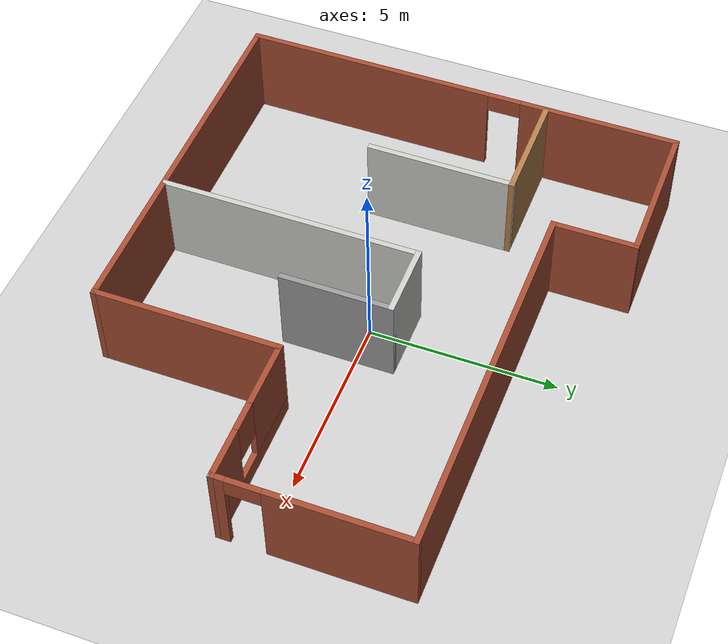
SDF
<?xml version="1.0" ?>

<sdf version="1.5">
  <!-- We use a custom world for the robot so that it can be tested in a simple house -->
  <world name="simple_house">

    <!-- Add a ground plane -->
    <include>
        <uri>model://ground_plane</uri>
        <material>
            <script>
                <uri>file://media/materials/scripts/gazebo.material</uri>
            </script>
        </material>
    </include>

    <!-- Global light source -->
    <include>
      <uri>model://sun</uri>
    </include>

    <!-- Apartment Walls -->
    <include>
      <uri>model://simple_house</uri>
      <pose>0 0 0 0 0 0</pose>
    </include>

  </world>
</sdf>

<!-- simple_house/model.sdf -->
<sdf version='1.7'>
  <model name='simple_house'>
    <pose>-5.019 -3.8615 0 0 -0 0</pose>
    <link name='Wall_10'>
      <pose>-6.85 -0 0 0 -0 1.5708</pose>
      <visual name='Wall_10_Visual_0'>
        <pose>-2.60594 0 1.25 0 -0 0</pose>
        <geometry>
          <box>
            <size>6.78811 0.15 2.5</size>
          </box>
        </geometry>
        <material>
          <script>
            <uri>file://media/materials/scripts/gazebo.material</uri>
            <name>Gazebo/Bricks</name>
          </script>
          <ambient>1 1 1 1</ambient>
        </material>
        <meta>
          <layer>0</layer>
        </meta>
      </visual>
      <collision name='Wall_10_Collision_0'>
        <geometry>
          <box>
            <size>6.78811 0.15 2.5</size>
          </box>
        </geometry>
        <pose>-2.60594 0 1.25 0 -0 0</pose>
      </collision>
      <visual name='Wall_10_Visual_1'>
        <pose>3.84406 0 1.25 0 -0 0</pose>
        <geometry>
          <box>
            <size>4.31189 0.15 2.5</size>
          </box>
        </geometry>
        <material>
          <script>
            <uri>file://media/materials/scripts/gazebo.material</uri>
            <name>Gazebo/Bricks</name>
          </script>
          <ambient>1 1 1 1</ambient>
        </material>
        <meta>
          <layer>0</layer>
        </meta>
      </visual>
      <collision name='Wall_10_Collision_1'>
        <geometry>
          <box>
            <size>4.31189 0.15 2.5</size>
          </box>
        </geometry>
        <pose>3.84406 0 1.25 0 -0 0</pose>
      </collision>
      <visual name='Wall_10_Visual_2'>
        <pose>1.23811 0 2.25 0 -0 0</pose>
        <geometry>
          <box>
            <size>0.9 0.15 0.5</size>
          </box>
        </geometry>
        <material>
          <script>
            <uri>file://media/materials/scripts/gazebo.material</uri>
            <name>Gazebo/Bricks</name>
          </script>
          <ambient>1 1 1 1</ambient>
        </material>
        <meta>
          <layer>0</layer>
        </meta>
      </visual>
      <collision name='Wall_10_Collision_2'>
        <geometry>
          <box>
            <size>0.9 0.15 0.5</size>
          </box>
        </geometry>
        <pose>1.23811 0 2.25 0 -0 0</pose>
      </collision>
    </link>
    <link name='Wall_11'>
      <collision name='Wall_11_Collision'>
        <geometry>
          <box>
            <size>4 0.15 2.5</size>
          </box>
        </geometry>
        <pose>0 0 1.25 0 -0 0</pose>
      </collision>
      <visual name='Wall_11_Visual'>
        <pose>0 0 1.25 0 -0 0</pose>
        <geometry>
          <box>
            <size>4 0.15 2.5</size>
          </box>
        </geometry>
        <material>
          <script>
            <uri>file://media/materials/scripts/gazebo.material</uri>
            <name>Gazebo/Bricks</name>
          </script>
          <ambient>1 1 1 1</ambient>
        </material>
        <meta>
          <layer>0</layer>
        </meta>
      </visual>
      <pose>-4.925 5.925 0 0 -0 0</pose>
    </link>
    <link name='Wall_12'>
      <collision name='Wall_12_Collision'>
        <geometry>
          <box>
            <size>2.3 0.15 2.5</size>
          </box>
        </geometry>
        <pose>0 0 1.25 0 -0 0</pose>
      </collision>
      <visual name='Wall_12_Visual'>
        <pose>0 0 1.25 0 -0 0</pose>
        <geometry>
          <box>
            <size>2.3 0.15 2.5</size>
          </box>
        </geometry>
        <material>
          <script>
            <uri>file://media/materials/scripts/gazebo.material</uri>
            <name>Gazebo/Bricks</name>
          </script>
          <ambient>1 1 1 1</ambient>
        </material>
        <meta>
          <layer>0</layer>
        </meta>
      </visual>
      <pose>-3 4.85 0 0 -0 -1.5708</pose>
    </link>
    <link name='Wall_15'>
      <collision name='Wall_15_Collision'>
        <geometry>
          <box>
            <size>3 0.15 2.5</size>
          </box>
        </geometry>
        <pose>0 0 1.25 0 -0 0</pose>
      </collision>
      <visual name='Wall_15_Visual'>
        <pose>0 0 1.25 0 -0 0</pose>
        <geometry>
          <box>
            <size>3 0.15 2.5</size>
          </box>
        </geometry>
        <material>
          <script>
            <uri>file://media/materials/scripts/gazebo.material</uri>
            <name>Gazebo/Wood</name>
          </script>
          <ambient>1 1 1 1</ambient>
        </material>
        <meta>
          <layer>0</layer>
        </meta>
      </visual>
      <pose>-5.36282 2.39615 0 0 -0 0</pose>
    </link>
    <link name='Wall_16'>
      <collision name='Wall_16_Collision'>
        <geometry>
          <box>
            <size>4 0.15 2.5</size>
          </box>
        </geometry>
        <pose>0 0 1.25 0 -0 0</pose>
      </collision>
      <visual name='Wall_16_Visual'>
        <pose>0 0 1.25 0 -0 0</pose>
        <geometry>
          <box>
            <size>4 0.15 2.5</size>
          </box>
        </geometry>
        <material>
          <script>
            <uri>file://media/materials/scripts/gazebo.material</uri>
            <name>Gazebo/CeilingTiled</name>
          </script>
          <ambient>1 1 1 1</ambient>
        </material>
        <meta>
          <layer>0</layer>
        </meta>
      </visual>
      <pose>-3.93783 0.471151 0 0 -0 -1.5708</pose>
    </link>
    <link name='Wall_18'>
      <collision name='Wall_18_Collision'>
        <geometry>
          <box>
            <size>7 0.15 2.5</size>
          </box>
        </geometry>
        <pose>0 0 1.25 0 -0 0</pose>
      </collision>
      <visual name='Wall_18_Visual'>
        <pose>0 0 1.25 0 -0 0</pose>
        <geometry>
          <box>
            <size>7 0.15 2.5</size>
          </box>
        </geometry>
        <material>
          <script>
            <uri>file://media/materials/scripts/gazebo.material</uri>
            <name>Gazebo/CeilingTiled</name>
          </script>
          <ambient>1 1 1 1</ambient>
        </material>
        <meta>
          <layer>0</layer>
        </meta>
      </visual>
      <pose>-0.8923 -2.4593 0 0 -0 1.5708</pose>
    </link>
    <link name='Wall_19'>
      <collision name='Wall_19_Collision'>
        <geometry>
          <box>
            <size>2 0.15 2.5</size>
          </box>
        </geometry>
        <pose>0 0 1.25 0 -0 0</pose>
      </collision>
      <visual name='Wall_19_Visual'>
        <pose>0 0 1.25 0 -0 0</pose>
        <geometry>
          <box>
            <size>2 0.15 2.5</size>
          </box>
        </geometry>
        <material>
          <script>
            <uri>file://media/materials/scripts/gazebo.material</uri>
            <name>Gazebo/CeilingTiled</name>
          </script>
          <ambient>1 1 1 1</ambient>
        </material>
        <meta>
          <layer>0</layer>
        </meta>
      </visual>
      <pose>0.0327 0.965705 0 0 -0 0</pose>
    </link>
    <link name='Wall_2'>
      <collision name='Wall_2_Collision'>
        <geometry>
          <box>
            <size>10 0.15 2.5</size>
          </box>
        </geometry>
        <pose>0 0 1.25 0 -0 0</pose>
      </collision>
      <visual name='Wall_2_Visual'>
        <pose>0 0 1.25 0 -0 0</pose>
        <geometry>
          <box>
            <size>10 0.15 2.5</size>
          </box>
        </geometry>
        <material>
          <script>
            <uri>file://media/materials/scripts/gazebo.material</uri>
            <name>Gazebo/Bricks</name>
          </script>
          <ambient>1 1 1 1</ambient>
        </material>
        <meta>
          <layer>0</layer>
        </meta>
      </visual>
      <pose>1.925 3.775 0 0 -0 0</pose>
    </link>
    <link name='Wall_20'>
      <collision name='Wall_20_Collision'>
        <geometry>
          <box>
            <size>3 0.15 2.5</size>
          </box>
        </geometry>
        <pose>0 0 1.25 0 -0 0</pose>
      </collision>
      <visual name='Wall_20_Visual'>
        <pose>0 0 1.25 0 -0 0</pose>
        <geometry>
          <box>
            <size>3 0.15 2.5</size>
          </box>
        </geometry>
        <material>
          <script>
            <uri>file://media/materials/scripts/gazebo.material</uri>
            <name>Gazebo/Grey</name>
          </script>
          <ambient>1 1 1 1</ambient>
        </material>
        <meta>
          <layer>0</layer>
        </meta>
      </visual>
      <pose>0.9577 -0.459295 0 0 -0 -1.5708</pose>
    </link>
    <link name='Wall_4'>
      <pose>6.85 1.35 0 0 -0 -1.5708</pose>
      <visual name='Wall_4_Visual_0'>
        <pose>-0.645111 0 1.25 0 -0 0</pose>
        <geometry>
          <box>
            <size>3.70978 0.15 2.5</size>
          </box>
        </geometry>
        <material>
          <script>
            <uri>file://media/materials/scripts/gazebo.material</uri>
            <name>Gazebo/Bricks</name>
          </script>
          <ambient>1 1 1 1</ambient>
        </material>
        <meta>
          <layer>0</layer>
        </meta>
      </visual>
      <collision name='Wall_4_Collision_0'>
        <geometry>
          <box>
            <size>3.70978 0.15 2.5</size>
          </box>
        </geometry>
        <pose>-0.645111 0 1.25 0 -0 0</pose>
      </collision>
      <visual name='Wall_4_Visual_1'>
        <pose>2.30489 0 1.25 0 -0 0</pose>
        <geometry>
          <box>
            <size>0.390223 0.15 2.5</size>
          </box>
        </geometry>
        <material>
          <script>
            <uri>file://media/materials/scripts/gazebo.material</uri>
            <name>Gazebo/Bricks</name>
          </script>
          <ambient>1 1 1 1</ambient>
        </material>
        <meta>
          <layer>0</layer>
        </meta>
      </visual>
      <collision name='Wall_4_Collision_1'>
        <geometry>
          <box>
            <size>0.390223 0.15 2.5</size>
          </box>
        </geometry>
        <pose>2.30489 0 1.25 0 -0 0</pose>
      </collision>
      <visual name='Wall_4_Visual_2'>
        <pose>1.65978 0 2.25 0 -0 0</pose>
        <geometry>
          <box>
            <size>0.9 0.15 0.5</size>
          </box>
        </geometry>
        <material>
          <script>
            <uri>file://media/materials/scripts/gazebo.material</uri>
            <name>Gazebo/Bricks</name>
          </script>
          <ambient>1 1 1 1</ambient>
        </material>
        <meta>
          <layer>0</layer>
        </meta>
      </visual>
      <collision name='Wall_4_Collision_2'>
        <geometry>
          <box>
            <size>0.9 0.15 0.5</size>
          </box>
        </geometry>
        <pose>1.65978 0 2.25 0 -0 0</pose>
      </collision>
    </link>
    <link name='Wall_5'>
      <collision name='Wall_5_Collision'>
        <geometry>
          <box>
            <size>0.15 0.15 2.5</size>
          </box>
        </geometry>
        <pose>0 0 1.25 0 -0 0</pose>
      </collision>
      <visual name='Wall_5_Visual'>
        <pose>0 0 1.25 0 -0 0</pose>
        <geometry>
          <box>
            <size>0.15 0.15 2.5</size>
          </box>
        </geometry>
        <material>
          <script>
            <uri>file://media/materials/scripts/gazebo.material</uri>
            <name>Gazebo/Grey</name>
          </script>
          <ambient>1 1 1 1</ambient>
        </material>
        <meta>
          <layer>0</layer>
        </meta>
      </visual>
      <pose>6.85 -1.075 0 0 -0 0</pose>
    </link>
    <link name='Wall_6'>
      <pose>4.925 -1.075 0 0 -0 3.14159</pose>
      <visual name='Wall_6_Visual_0'>
        <pose>-1.30781 0 1.25 0 -0 0</pose>
        <geometry>
          <box>
            <size>1.38439 0.15 2.5</size>
          </box>
        </geometry>
        <material>
          <script>
            <uri>file://media/materials/scripts/gazebo.material</uri>
            <name>Gazebo/Bricks</name>
          </script>
          <ambient>1 1 1 1</ambient>
        </material>
        <meta>
          <layer>0</layer>
        </meta>
      </visual>
      <collision name='Wall_6_Collision_0'>
        <geometry>
          <box>
            <size>1.38439 0.15 2.5</size>
          </box>
        </geometry>
        <pose>-1.30781 0 1.25 0 -0 0</pose>
      </collision>
      <visual name='Wall_6_Visual_1'>
        <pose>0.692194 0 0.25 0 -0 0</pose>
        <geometry>
          <box>
            <size>2.61561 0.15 0.5</size>
          </box>
        </geometry>
        <material>
          <script>
            <uri>file://media/materials/scripts/gazebo.material</uri>
            <name>Gazebo/Bricks</name>
          </script>
          <ambient>1 1 1 1</ambient>
        </material>
        <meta>
          <layer>0</layer>
        </meta>
      </visual>
      <collision name='Wall_6_Collision_1'>
        <geometry>
          <box>
            <size>2.61561 0.15 0.5</size>
          </box>
        </geometry>
        <pose>0.692194 0 0.25 0 -0 0</pose>
      </collision>
      <visual name='Wall_6_Visual_2'>
        <pose>1.09219 0 1.5 0 -0 0</pose>
        <geometry>
          <box>
            <size>1.81561 0.15 2</size>
          </box>
        </geometry>
        <material>
          <script>
            <uri>file://media/materials/scripts/gazebo.material</uri>
            <name>Gazebo/Bricks</name>
          </script>
          <ambient>1 1 1 1</ambient>
        </material>
        <meta>
          <layer>0</layer>
        </meta>
      </visual>
      <collision name='Wall_6_Collision_2'>
        <geometry>
          <box>
            <size>1.81561 0.15 2</size>
          </box>
        </geometry>
        <pose>1.09219 0 1.5 0 -0 0</pose>
      </collision>
      <visual name='Wall_6_Visual_3'>
        <pose>-0.215612 0 1.9 0 -0 0</pose>
        <geometry>
          <box>
            <size>0.8 0.15 1.2</size>
          </box>
        </geometry>
        <material>
          <script>
            <uri>file://media/materials/scripts/gazebo.material</uri>
            <name>Gazebo/Bricks</name>
          </script>
          <ambient>1 1 1 1</ambient>
        </material>
        <meta>
          <layer>0</layer>
        </meta>
      </visual>
      <collision name='Wall_6_Collision_3'>
        <geometry>
          <box>
            <size>0.8 0.15 1.2</size>
          </box>
        </geometry>
        <pose>-0.215612 0 1.9 0 -0 0</pose>
      </collision>
    </link>
    <link name='Wall_8'>
      <collision name='Wall_8_Collision'>
        <geometry>
          <box>
            <size>5 0.15 2.5</size>
          </box>
        </geometry>
        <pose>0 0 1.25 0 -0 0</pose>
      </collision>
      <visual name='Wall_8_Visual'>
        <pose>0 0 1.25 0 -0 0</pose>
        <geometry>
          <box>
            <size>5 0.15 2.5</size>
          </box>
        </geometry>
        <material>
          <script>
            <uri>file://media/materials/scripts/gazebo.material</uri>
            <name>Gazebo/Bricks</name>
          </script>
          <ambient>1 1 1 1</ambient>
        </material>
        <meta>
          <layer>0</layer>
        </meta>
      </visual>
      <pose>3 -3.5 0 0 -0 -1.5708</pose>
    </link>
    <link name='Wall_9'>
      <collision name='Wall_9_Collision'>
        <geometry>
          <box>
            <size>10 0.15 2.5</size>
          </box>
        </geometry>
        <pose>0 0 1.25 0 -0 0</pose>
      </collision>
      <visual name='Wall_9_Visual'>
        <pose>0 0 1.25 0 -0 0</pose>
        <geometry>
          <box>
            <size>10 0.15 2.5</size>
          </box>
        </geometry>
        <material>
          <script>
            <uri>file://media/materials/scripts/gazebo.material</uri>
            <name>Gazebo/Bricks</name>
          </script>
          <ambient>1 1 1 1</ambient>
        </material>
        <meta>
          <layer>0</layer>
        </meta>
      </visual>
      <pose>-1.925 -5.925 0 0 -0 3.14159</pose>
    </link>
    <static>1</static>
  </model>
</sdf>
